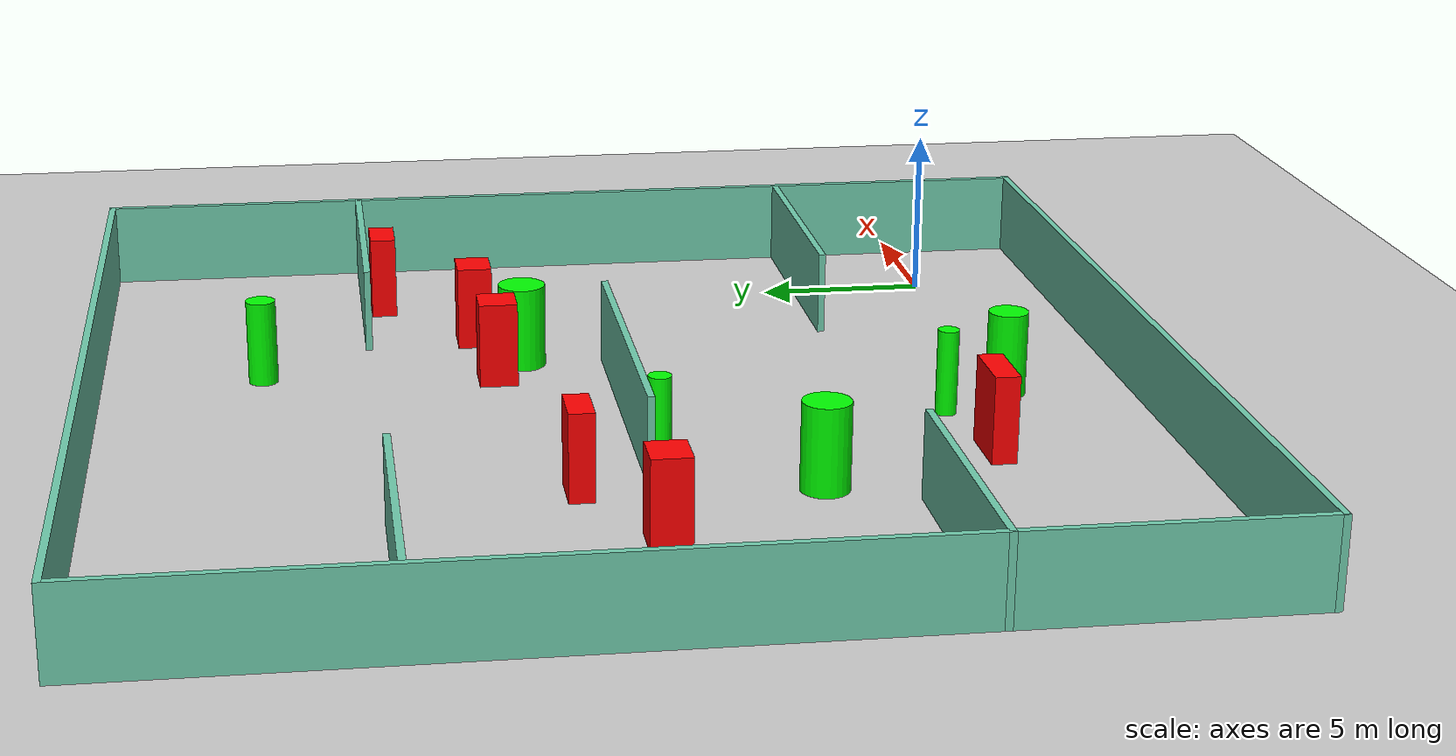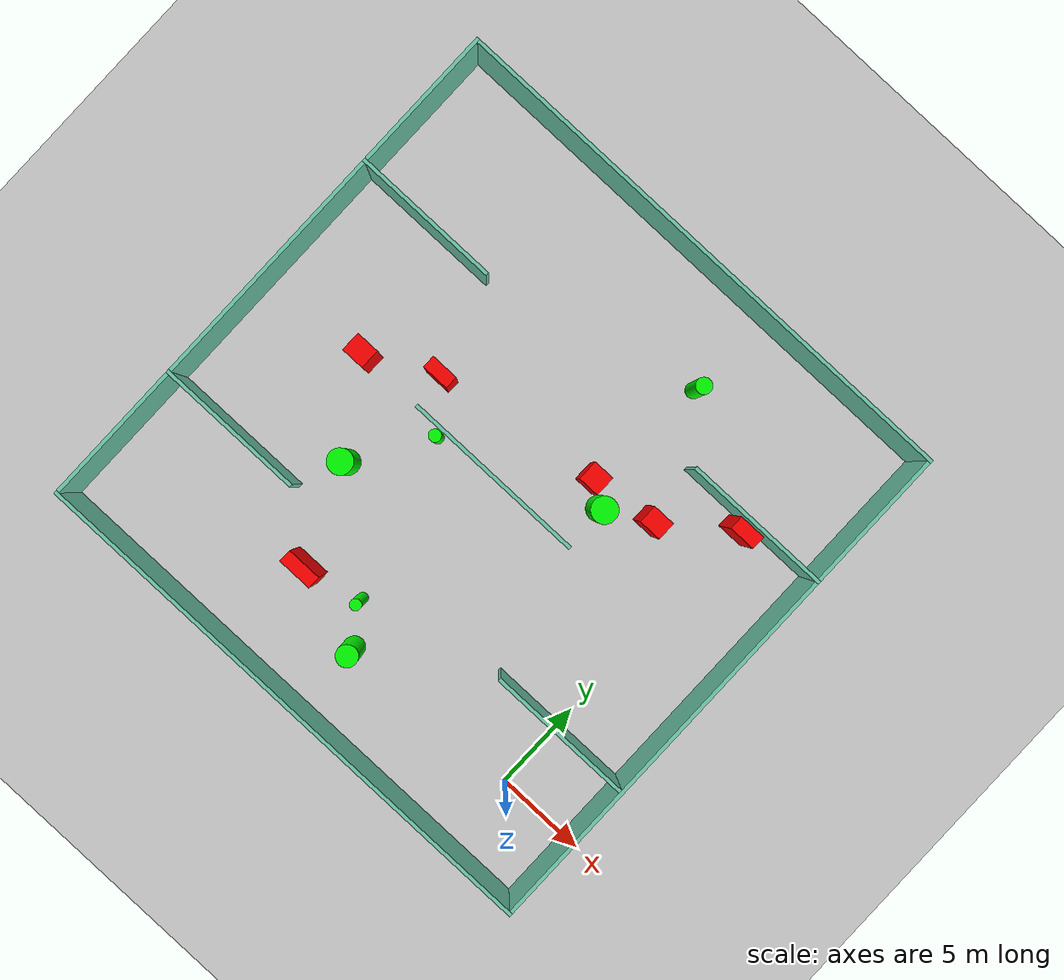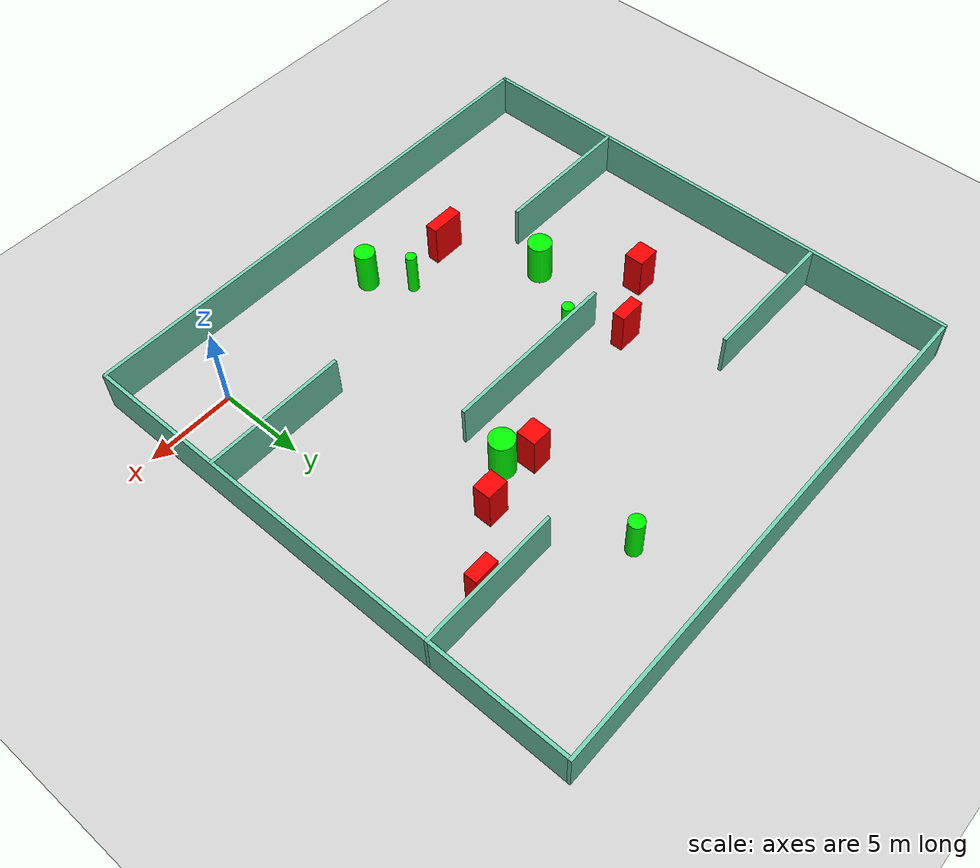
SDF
<sdf version="1.7">
 <world name="default">
  <light name="sun" type="directional">
   <pose>0 0 10 0 -0 0</pose>
   <diffuse>0.8 0.8 0.8 1</diffuse>
   <specular>0.2 0.2 0.2 1</specular>
   <attenuation>
    <range>1000</range>
    <constant>0.9</constant>
    <linear>0.01</linear>
    <quadratic>0.001</quadratic>
   </attenuation>
   <direction>-0.5 0.1 -0.9</direction>
   <spot><inner_angle>0</inner_angle><outer_angle>0</outer_angle><falloff>0</falloff></spot>
  </light>
  <model name="ground_plane">
   <static>1</static>
   <link name="link">
    <collision name="collision">
     <geometry><plane><normal>0 0 1</normal><size>100 100</size></plane></geometry>
     <surface>
      <contact><collide_bitmask>65535</collide_bitmask></contact>
      <friction><ode><mu>100</mu><mu2>50</mu2></ode></friction>
     </surface>
    </collision>
    <visual name="visual">
     <cast_shadows>0</cast_shadows>
     <geometry><plane><normal>0 0 1</normal><size>100 100</size></plane></geometry>
     <material>
      <script><uri>file://media/materials/scripts/gazebo.material</uri><name>Gazebo/Grey</name></script>
     </material>
    </visual>
   </link>
  </model>
  <gravity>0 0 -9.8</gravity>
  <magnetic_field>6e-06 2.3e-05 -4.2e-05</magnetic_field>
  <atmosphere type="adiabatic"/>
  <physics type="ode">
   <max_step_size>0.001</max_step_size>
   <real_time_factor>1</real_time_factor>
   <real_time_update_rate>1000</real_time_update_rate>
  </physics>
  <scene><ambient>0.4 0.4 0.4 1</ambient><background>0.7 0.7 0.7 1</background><shadows>1</shadows></scene>
  <spherical_coordinates>
   <surface_model>EARTH_WGS84</surface_model>
   <latitude_deg>0</latitude_deg>
   <longitude_deg>0</longitude_deg>
   <elevation>0</elevation>
   <heading_deg>0</heading_deg>
  </spherical_coordinates>
  <model name="my_base_walls">
   <link name="Wall_10">
    <collision name="Wall_10_Collision">
     <geometry><box><size>8.2 0.2 2.5</size></box></geometry>
     <pose>0 0 1.25 0 -0 0</pose>
    </collision>
    <visual name="Wall_10_Visual">
     <pose>0 0 1.25 0 -0 0</pose>
     <geometry><box><size>8.2 0.2 2.5</size></box></geometry>
     <material>
      <script><uri>file://media/materials/scripts/gazebo.material</uri><name>Gazebo/Grey</name></script>
      <ambient>0.435294 0.796078 0.67451 1</ambient>
     </material>
     <meta><layer>0</layer></meta>
    </visual>
    <pose>-11 -7 0 0 -0 0</pose>
   </link>
   <link name="Wall_12">
    <collision name="Wall_12_Collision">
     <geometry><box><size>8.2 0.2 2.5</size></box></geometry>
     <pose>0 0 1.25 0 -0 0</pose>
    </collision>
    <visual name="Wall_12_Visual">
     <pose>0 0 1.25 0 -0 0</pose>
     <geometry><box><size>8.2 0.2 2.5</size></box></geometry>
     <material>
      <script><uri>file://media/materials/scripts/gazebo.material</uri><name>Gazebo/Grey</name></script>
      <ambient>0.435294 0.796078 0.67451 1</ambient>
     </material>
     <meta><layer>0</layer></meta>
    </visual>
    <pose>-11 7 0 0 -0 0</pose>
   </link>
   <link name="Wall_14">
    <collision name="Wall_14_Collision">
     <geometry><box><size>8.2 0.2 2.5</size></box></geometry>
     <pose>0 0 1.25 0 -0 0</pose>
    </collision>
    <visual name="Wall_14_Visual">
     <pose>0 0 1.25 0 -0 0</pose>
     <geometry><box><size>8.2 0.2 2.5</size></box></geometry>
     <material>
      <script><uri>file://media/materials/scripts/gazebo.material</uri><name>Gazebo/Grey</name></script>
      <ambient>0.435294 0.796078 0.67451 1</ambient>
     </material>
     <meta><layer>0</layer></meta>
    </visual>
    <pose>11 7 0 0 -0 3.14159</pose>
   </link>
   <link name="Wall_16">
    <collision name="Wall_16_Collision">
     <geometry><box><size>10.2 0.2 2.5</size></box></geometry>
     <pose>0 0 1.25 0 -0 0</pose>
    </collision>
    <visual name="Wall_16_Visual">
     <pose>0 0 1.25 0 -0 0</pose>
     <geometry><box><size>10.2 0.2 2.5</size></box></geometry>
     <material>
      <script><uri>file://media/materials/scripts/gazebo.material</uri><name>Gazebo/Grey</name></script>
      <ambient>0.435294 0.796078 0.67451 1</ambient>
     </material>
     <meta><layer>0</layer></meta>
    </visual>
    <pose>0 0 0 0 -0 3.14159</pose>
   </link>
   <link name="Wall_2">
    <collision name="Wall_2_Collision">
     <geometry><box><size>30.2 0.2 2.5</size></box></geometry>
     <pose>0 0 1.25 0 -0 0</pose>
    </collision>
    <visual name="Wall_2_Visual">
     <pose>0 0 1.25 0 -0 0</pose>
     <geometry><box><size>30.2 0.2 2.5</size></box></geometry>
     <material>
      <script><uri>file://media/materials/scripts/gazebo.material</uri><name>Gazebo/Grey</name></script>
      <ambient>0.435294 0.796078 0.67451 1</ambient>
     </material>
     <meta><layer>0</layer></meta>
    </visual>
    <pose>0 -15 0 0 -0 3.14159</pose>
   </link>
   <link name="Wall_3">
    <collision name="Wall_3_Collision">
     <geometry><box><size>30.2 0.2 2.5</size></box></geometry>
     <pose>0 0 1.25 0 -0 0</pose>
    </collision>
    <visual name="Wall_3_Visual">
     <pose>0 0 1.25 0 -0 0</pose>
     <geometry><box><size>30.2 0.2 2.5</size></box></geometry>
     <material>
      <script><uri>file://media/materials/scripts/gazebo.material</uri><name>Gazebo/Grey</name></script>
      <ambient>0.435294 0.796078 0.67451 1</ambient>
     </material>
     <meta><layer>0</layer></meta>
    </visual>
    <pose>-15 0 0 0 -0 1.5708</pose>
   </link>
   <link name="Wall_4">
    <collision name="Wall_4_Collision">
     <geometry><box><size>30.2 0.2 2.5</size></box></geometry>
     <pose>0 0 1.25 0 -0 0</pose>
    </collision>
    <visual name="Wall_4_Visual">
     <pose>0 0 1.25 0 -0 0</pose>
     <geometry><box><size>30.2 0.2 2.5</size></box></geometry>
     <material>
      <script><uri>file://media/materials/scripts/gazebo.material</uri><name>Gazebo/Grey</name></script>
      <ambient>0.435294 0.796078 0.67451 1</ambient>
     </material>
     <meta><layer>0</layer></meta>
    </visual>
    <pose>0 15 0 0 -0 0</pose>
   </link>
   <link name="Wall_6">
    <collision name="Wall_6_Collision">
     <geometry><box><size>30.2 0.2 2.5</size></box></geometry>
     <pose>0 0 1.25 0 -0 0</pose>
    </collision>
    <visual name="Wall_6_Visual">
     <pose>0 0 1.25 0 -0 0</pose>
     <geometry><box><size>30.2 0.2 2.5</size></box></geometry>
     <material>
      <script><uri>file://media/materials/scripts/gazebo.material</uri><name>Gazebo/Grey</name></script>
      <ambient>0.435294 0.796078 0.67451 1</ambient>
     </material>
     <meta><layer>0</layer></meta>
    </visual>
    <pose>15 0 0 0 -0 1.5708</pose>
   </link>
   <link name="Wall_8">
    <collision name="Wall_8_Collision">
     <geometry><box><size>8.2 0.2 2.5</size></box></geometry>
     <pose>0 0 1.25 0 -0 0</pose>
    </collision>
    <visual name="Wall_8_Visual">
     <pose>0 0 1.25 0 -0 0</pose>
     <geometry><box><size>8.2 0.2 2.5</size></box></geometry>
     <material>
      <script><uri>file://media/materials/scripts/gazebo.material</uri><name>Gazebo/Grey</name></script>
      <ambient>0.435294 0.796078 0.67451 1</ambient>
     </material>
     <meta><layer>0</layer></meta>
    </visual>
    <pose>11 -7 0 0 -0 3.14159</pose>
   </link>
   <static>1</static>
   <pose>-11 11 0 0 -0 0</pose>
  </model>
  <model name="cylinder1">
   <static>1</static>
   <link name="link">
    <inertial>
     <mass>1</mass>
     <inertia><ixx>0.5</ixx><ixy>0</ixy><ixz>0</ixz><iyy>0.5</iyy><iyz>0</iyz><izz>1</izz></inertia>
    </inertial>
    <collision name="collision">
     <geometry><cylinder><radius>0.677886427438553</radius><length>2.5</length></cylinder></geometry>
    </collision>
    <visual name="visual">
     <geometry><cylinder><radius>0.677886427438553</radius><length>2.5</length></cylinder></geometry>
     <material>
      <ambient>0 1 0 1</ambient>
      <diffuse>0 1 0 1</diffuse>
      <specular>0.1 0.1 0.1 1</specular>
      <emissive>0 0 0 0</emissive>
     </material>
    </visual>
   </link>
   <pose>-16.96114755419638 6.482099609706477 1.25 0 0 0</pose>
  </model>
  <model name="cylinder2">
   <static>1</static>
   <link name="link">
    <inertial>
     <mass>1</mass>
     <inertia><ixx>0.5</ixx><ixy>0</ixy><ixz>0</ixz><iyy>0.5</iyy><iyz>0</iyz><izz>1</izz></inertia>
    </inertial>
    <collision name="collision">
     <geometry><cylinder><radius>0.6983883817278298</radius><length>2.5</length></cylinder></geometry>
    </collision>
    <visual name="visual">
     <geometry><cylinder><radius>0.6983883817278298</radius><length>2.5</length></cylinder></geometry>
     <material>
      <ambient>0 1 0 1</ambient>
      <diffuse>0 1 0 1</diffuse>
      <specular>0.1 0.1 0.1 1</specular>
      <emissive>0 0 0 0</emissive>
     </material>
    </visual>
   </link>
   <pose>-5.9453994712241744 13.488393929320242 1.25 0 0 0</pose>
  </model>
  <model name="cylinder3">
   <static>1</static>
   <link name="link">
    <inertial>
     <mass>1</mass>
     <inertia><ixx>0.5</ixx><ixy>0</ixy><ixz>0</ixz><iyy>0.5</iyy><iyz>0</iyz><izz>1</izz></inertia>
    </inertial>
    <collision name="collision">
     <geometry><cylinder><radius>0.5769929605992132</radius><length>2.5</length></cylinder></geometry>
    </collision>
    <visual name="visual">
     <geometry><cylinder><radius>0.5769929605992132</radius><length>2.5</length></cylinder></geometry>
     <material>
      <ambient>0 1 0 1</ambient>
      <diffuse>0 1 0 1</diffuse>
      <specular>0.1 0.1 0.1 1</specular>
      <emissive>0 0 0 0</emissive>
     </material>
    </visual>
   </link>
   <pose>-10.29606024267234 -0.206230561426477 1.25 0 0 0</pose>
  </model>
  <model name="cylinder4">
   <static>1</static>
   <link name="link">
    <inertial>
     <mass>1</mass>
     <inertia><ixx>0.5</ixx><ixy>0</ixy><ixz>0</ixz><iyy>0.5</iyy><iyz>0</iyz><izz>1</izz></inertia>
    </inertial>
    <collision name="collision">
     <geometry><cylinder><radius>0.4299121241332032</radius><length>2.5</length></cylinder></geometry>
    </collision>
    <visual name="visual">
     <geometry><cylinder><radius>0.4299121241332032</radius><length>2.5</length></cylinder></geometry>
     <material>
      <ambient>0 1 0 1</ambient>
      <diffuse>0 1 0 1</diffuse>
      <specular>0.1 0.1 0.1 1</specular>
      <emissive>0 0 0 0</emissive>
     </material>
    </visual>
   </link>
   <pose>-6.516986774652931 21.188893956544774 1.25 0 0 0</pose>
  </model>
  <model name="cylinder5">
   <static>1</static>
   <link name="link">
    <inertial>
     <mass>1</mass>
     <inertia><ixx>0.5</ixx><ixy>0</ixy><ixz>0</ixz><iyy>0.5</iyy><iyz>0</iyz><izz>1</izz></inertia>
    </inertial>
    <collision name="collision">
     <geometry><cylinder><radius>0.3314192077126836</radius><length>2.5</length></cylinder></geometry>
    </collision>
    <visual name="visual">
     <geometry><cylinder><radius>0.3314192077126836</radius><length>2.5</length></cylinder></geometry>
     <material>
      <ambient>0 1 0 1</ambient>
      <diffuse>0 1 0 1</diffuse>
      <specular>0.1 0.1 0.1 1</specular>
      <emissive>0 0 0 0</emissive>
     </material>
    </visual>
   </link>
   <pose>-14.443272967157021 10.536234979365801 1.25 0 0 0</pose>
  </model>
  <model name="cylinder6">
   <static>1</static>
   <link name="link">
    <inertial>
     <mass>1</mass>
     <inertia><ixx>0.5</ixx><ixy>0</ixy><ixz>0</ixz><iyy>0.5</iyy><iyz>0</iyz><izz>1</izz></inertia>
    </inertial>
    <collision name="collision">
     <geometry><cylinder><radius>0.304951591832536</radius><length>2.5</length></cylinder></geometry>
    </collision>
    <visual name="visual">
     <geometry><cylinder><radius>0.304951591832536</radius><length>2.5</length></cylinder></geometry>
     <material>
      <ambient>0 1 0 1</ambient>
      <diffuse>0 1 0 1</diffuse>
      <specular>0.1 0.1 0.1 1</specular>
      <emissive>0 0 0 0</emissive>
     </material>
    </visual>
   </link>
   <pose>-11.683498631656905 1.9083031215412483 1.25 0 0 0</pose>
  </model>
  <model name="box1">
   <static>1</static>
   <link name="link">
    <inertial>
     <mass>1</mass>
     <inertia><ixx>0.083</ixx><ixy>0</ixy><ixz>0</ixz><iyy>0.083</iyy><iyz>0</iyz><izz>0.083</izz></inertia>
    </inertial>
    <collision name="collision">
     <geometry><box><size>1.1732882726763187 1.1256065758074114 2.5</size></box></geometry>
    </collision>
    <visual name="visual">
     <geometry><box><size>1.1732882726763187 1.1256065758074114 2.5</size></box></geometry>
     <material>
      <ambient>1 0 0 1</ambient>
      <diffuse>1 0 0 1</diffuse>
      <specular>0.1 0.1 0.1 1</specular>
      <emissive>0 0 0 0</emissive>
     </material>
    </visual>
    <sensor name="my_contact" type="contact">
     <contact><collision>box_collision</collision><topic>__default_topic__</topic></contact>
    </sensor>
   </link>
   <pose>-7.283992865790186 14.343081666711402 1.25 0 0 0</pose>
  </model>
  <model name="box2">
   <static>1</static>
   <link name="link">
    <inertial>
     <mass>1</mass>
     <inertia><ixx>0.083</ixx><ixy>0</ixy><ixz>0</ixz><iyy>0.083</iyy><iyz>0</iyz><izz>0.083</izz></inertia>
    </inertial>
    <collision name="collision">
     <geometry><box><size>1.286364666299531 1.1056469219995264 2.5</size></box></geometry>
    </collision>
    <visual name="visual">
     <geometry><box><size>1.286364666299531 1.1056469219995264 2.5</size></box></geometry>
     <material>
      <ambient>1 0 0 1</ambient>
      <diffuse>1 0 0 1</diffuse>
      <specular>0.1 0.1 0.1 1</specular>
      <emissive>0 0 0 0</emissive>
     </material>
    </visual>
    <sensor name="my_contact" type="contact">
     <contact><collision>box_collision</collision><topic>__default_topic__</topic></contact>
    </sensor>
   </link>
   <pose>-19.913927754915022 11.093191290043617 1.25 0 0 0</pose>
  </model>
  <model name="box3">
   <static>1</static>
   <link name="link">
    <inertial>
     <mass>1</mass>
     <inertia><ixx>0.083</ixx><ixy>0</ixy><ixz>0</ixz><iyy>0.083</iyy><iyz>0</iyz><izz>0.083</izz></inertia>
    </inertial>
    <collision name="collision">
     <geometry><box><size>1.9335535575455507 0.7086729012111679 2.5</size></box></geometry>
    </collision>
    <visual name="visual">
     <geometry><box><size>1.9335535575455507 0.7086729012111679 2.5</size></box></geometry>
     <material>
      <ambient>1 0 0 1</ambient>
      <diffuse>1 0 0 1</diffuse>
      <specular>0.1 0.1 0.1 1</specular>
      <emissive>0 0 0 0</emissive>
     </material>
    </visual>
    <sensor name="my_contact" type="contact">
     <contact><collision>box_collision</collision><topic>__default_topic__</topic></contact>
    </sensor>
   </link>
   <pose>-14.853433078581524 1.3096137562561196 1.25 0 0 0</pose>
  </model>
  <model name="box4">
   <static>1</static>
   <link name="link">
    <inertial>
     <mass>1</mass>
     <inertia><ixx>0.083</ixx><ixy>0</ixy><ixz>0</ixz><iyy>0.083</iyy><iyz>0</iyz><izz>0.083</izz></inertia>
    </inertial>
    <collision name="collision">
     <geometry><box><size>1.5149418675167414 0.7151927922425482 2.5</size></box></geometry>
    </collision>
    <visual name="visual">
     <geometry><box><size>1.5149418675167414 0.7151927922425482 2.5</size></box></geometry>
     <material>
      <ambient>1 0 0 1</ambient>
      <diffuse>1 0 0 1</diffuse>
      <specular>0.1 0.1 0.1 1</specular>
      <emissive>0 0 0 0</emissive>
     </material>
    </visual>
    <sensor name="my_contact" type="contact">
     <contact><collision>box_collision</collision><topic>__default_topic__</topic></contact>
    </sensor>
   </link>
   <pose>-16.360611076539076 12.952799126690905 1.25 0 0 0</pose>
  </model>
  <model name="box5">
   <static>1</static>
   <link name="link">
    <inertial>
     <mass>1</mass>
     <inertia><ixx>0.083</ixx><ixy>0</ixy><ixz>0</ixz><iyy>0.083</iyy><iyz>0</iyz><izz>0.083</izz></inertia>
    </inertial>
    <collision name="collision">
     <geometry><box><size>1.4681795400559348 0.7702243733571487 2.5</size></box></geometry>
    </collision>
    <visual name="visual">
     <geometry><box><size>1.4681795400559348 0.7702243733571487 2.5</size></box></geometry>
     <material>
      <ambient>1 0 0 1</ambient>
      <diffuse>1 0 0 1</diffuse>
      <specular>0.1 0.1 0.1 1</specular>
      <emissive>0 0 0 0</emissive>
     </material>
    </visual>
    <sensor name="my_contact" type="contact">
     <contact><collision>box_collision</collision><topic>__default_topic__</topic></contact>
    </sensor>
   </link>
   <pose>-0.12664620952451244 17.39460607958067 1.25 0 0 0</pose>
  </model>
  <model name="box6">
   <static>1</static>
   <link name="link">
    <inertial>
     <mass>1</mass>
     <inertia><ixx>0.083</ixx><ixy>0</ixy><ixz>0</ixz><iyy>0.083</iyy><iyz>0</iyz><izz>0.083</izz></inertia>
    </inertial>
    <collision name="collision">
     <geometry><box><size>1.2558676361590972 1.028629310246451 2.5</size></box></geometry>
    </collision>
    <visual name="visual">
     <geometry><box><size>1.2558676361590972 1.028629310246451 2.5</size></box></geometry>
     <material>
      <ambient>1 0 0 1</ambient>
      <diffuse>1 0 0 1</diffuse>
      <specular>0.1 0.1 0.1 1</specular>
      <emissive>0 0 0 0</emissive>
     </material>
    </visual>
    <sensor name="my_contact" type="contact">
     <contact><collision>box_collision</collision><topic>__default_topic__</topic></contact>
    </sensor>
   </link>
   <pose>-3.665866578423767 14.768718001872418 1.25 0 0 0</pose>
  </model>
 </world>
</sdf>
